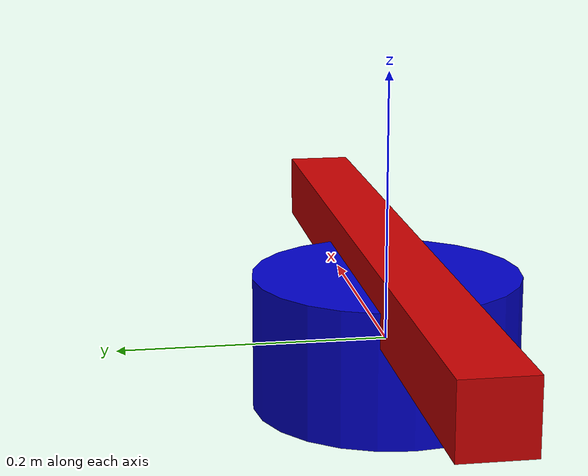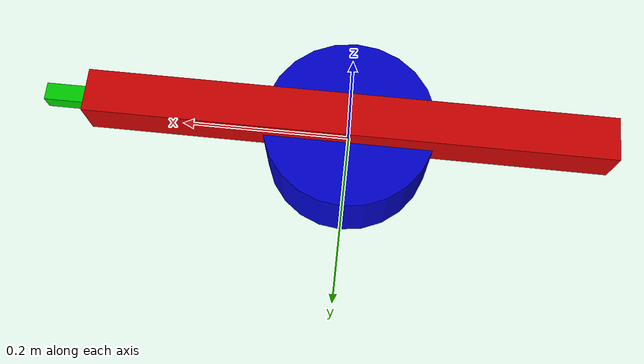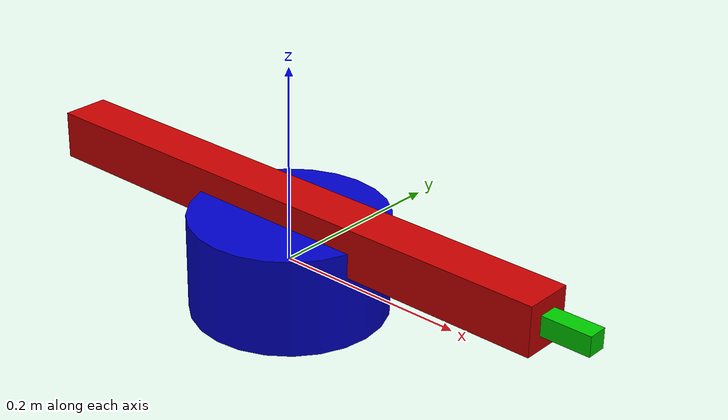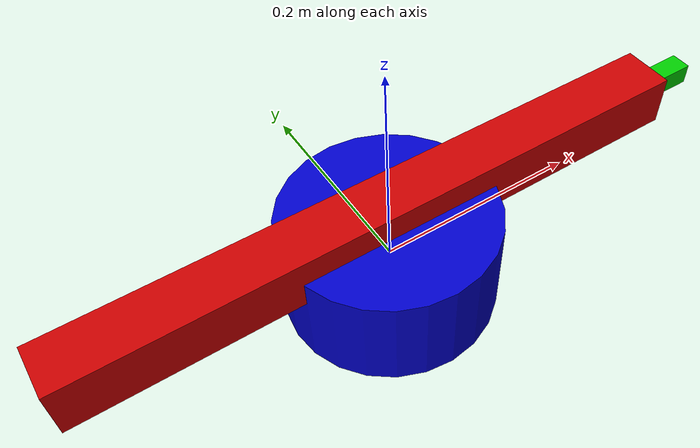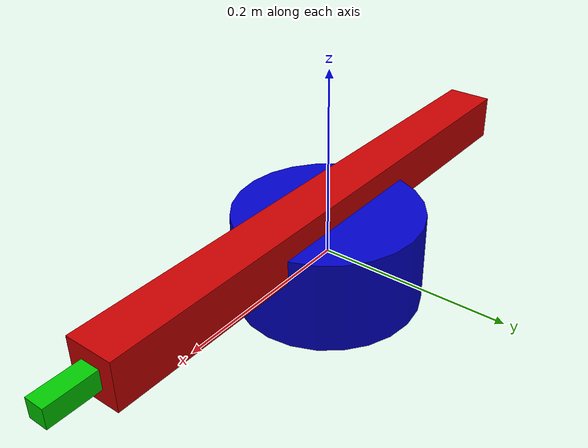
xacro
<?xml version="1.0"?>
<robot name="simple_arm" xmlns:xacro="http://www.ros.org/wiki/xacro">

  <!-- Базовое звено -->
  <link name="base_link">
    <visual>
      <geometry>
        <cylinder length="0.1" radius="0.1"/>
      </geometry>
      <material name="blue">
        <color rgba="0 0 0.8 1"/>
      </material>
    </visual>
    <collision>
      <geometry>
        <cylinder length="0.1" radius="0.1"/>
      </geometry>
    </collision>
    <inertial>
      <mass value="1"/>
      <inertia ixx="0.01" ixy="0" ixz="0" iyy="0.01" iyz="0" izz="0.01"/>
    </inertial>
  </link>

  <!-- Первое звено манипулятора -->
  <link name="link1">
    <visual>
      <geometry>
        <box size="0.6 0.05 0.05"/>
      </geometry>
      <material name="red">
        <color rgba="0.8 0 0 1"/>
      </material>
    </visual>
    <collision>
      <geometry>
        <box size="0.6 0.05 0.05"/>
      </geometry>
    </collision>
    <inertial>
      <mass value="0.5"/>
      <inertia ixx="0.01" ixy="0" ixz="0" iyy="0.01" iyz="0" izz="0.01"/>
    </inertial>
  </link>

  <!-- Соединение базы и первого звена -->
  <joint name="joint1" type="revolute">
    <parent link="base_link"/>
    <child link="link1"/>
    <origin xyz="0 0 0.05" rpy="0 0 0"/>
    <axis xyz="0 0 1"/>
    <limit lower="-3.14" upper="3.14" effort="10" velocity="1"/>
  </joint>

  <!-- Захват -->
  <link name="gripper">
    <visual>
      <geometry>
        <box size="0.1 0.02 0.02"/>
      </geometry>
      <material name="green">
        <color rgba="0 0.8 0 1"/>
      </material>
    </visual>
    <collision>
      <geometry>
        <box size="0.1 0.02 0.02"/>
      </geometry>
    </collision>
  </link>

  <!-- Соединение первого звена и захвата -->
  <joint name="gripper_joint" type="fixed">
    <parent link="link1"/>
    <child link="gripper"/>
    <origin xyz="0.3 0 0" rpy="0 0 0"/>
  </joint>

</robot>
